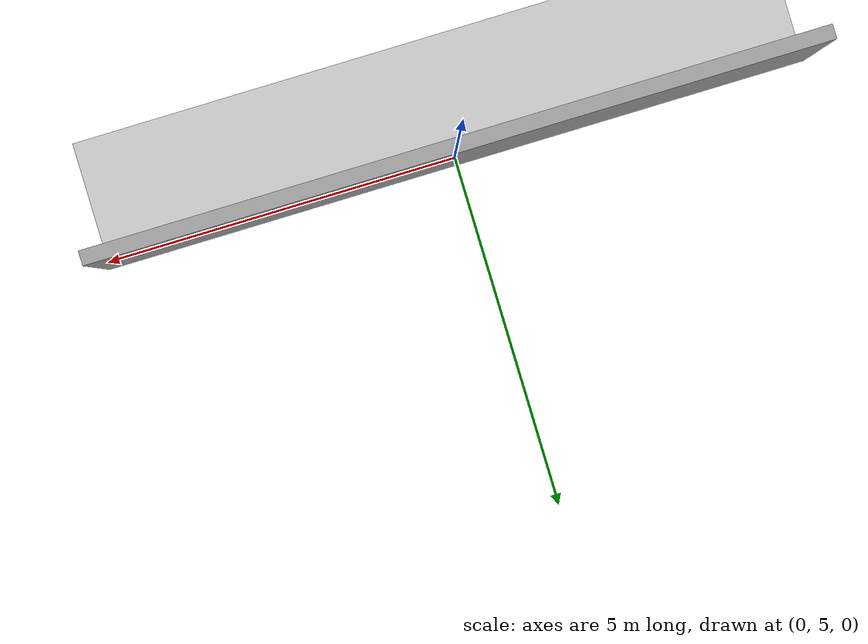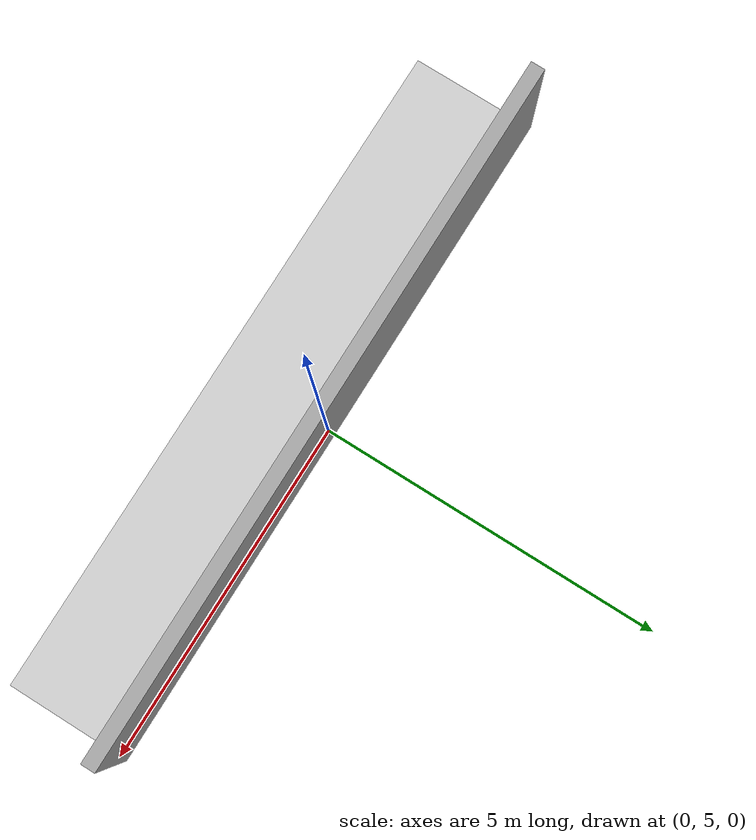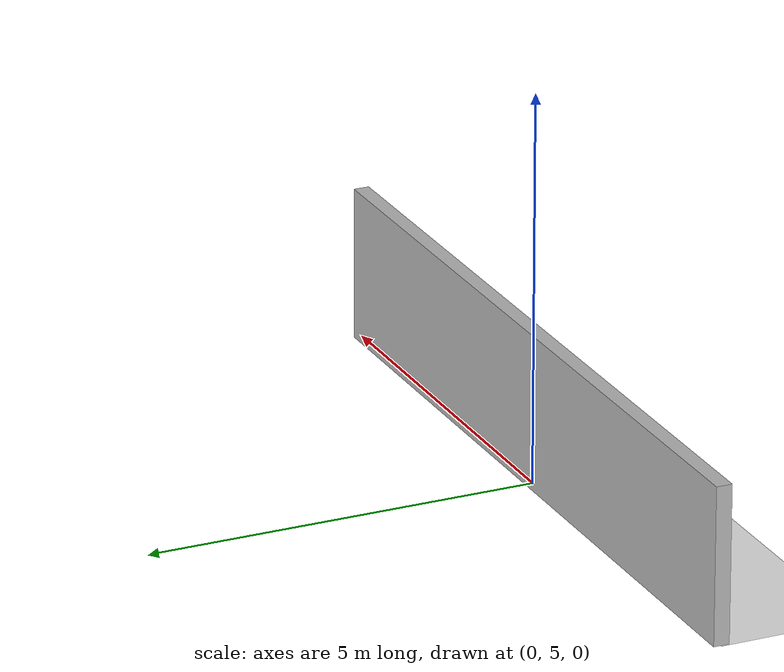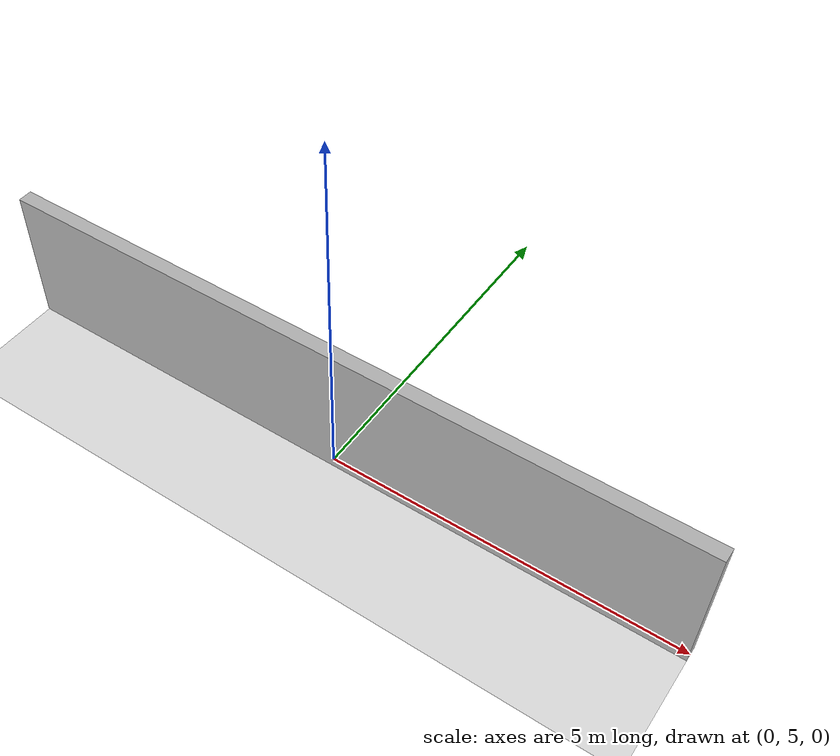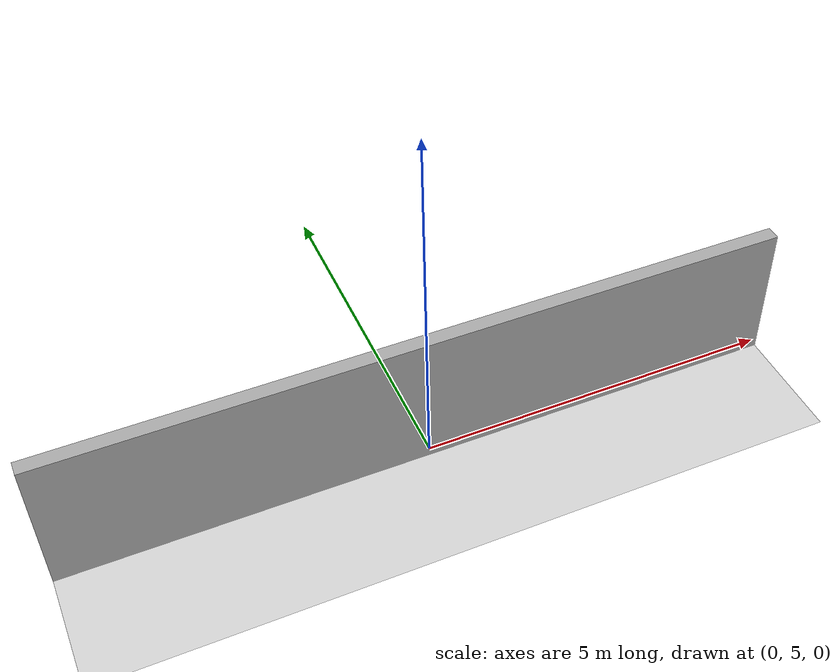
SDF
<?xml version="1.0"?>
<!-- Gazebo World Template: Indoor Test Arena -->
<sdf version="1.7">
  <world name="indoor_test_arena">

    <physics type="ode">
      <real_time_update_rate>1000.0</real_time_update_rate>
      <max_step_size>0.001</max_step_size>
    </physics>

    <include>
      <uri>model://sun</uri>
    </include>

    <!-- Floor -->
    <model name="floor">
      <static>true</static>
      <link name="link">
        <collision name="collision">
          <geometry>
            <plane>
              <normal>0 0 1</normal>
              <size>10 10</size>
            </plane>
          </geometry>
        </collision>
        <visual name="visual">
          <geometry>
            <plane>
              <normal>0 0 1</normal>
              <size>10 10</size>
            </plane>
          </geometry>
          <material>
            <ambient>0.8 0.8 0.8 1</ambient>
            <diffuse>0.9 0.9 0.9 1</diffuse>
          </material>
        </visual>
      </link>
    </model>

    <!-- Walls -->
    <model name="wall_north">
      <static>true</static>
      <pose>0 5 1 0 0 0</pose>
      <link name="link">
        <collision name="collision">
          <geometry>
            <box>
              <size>10 0.2 2</size>
            </box>
          </geometry>
        </collision>
        <visual name="visual">
          <geometry>
            <box>
              <size>10 0.2 2</size>
            </box>
          </geometry>
        </visual>
      </link>
    </model>

    <!-- Additional walls and obstacles to be added -->

  </world>
</sdf>
